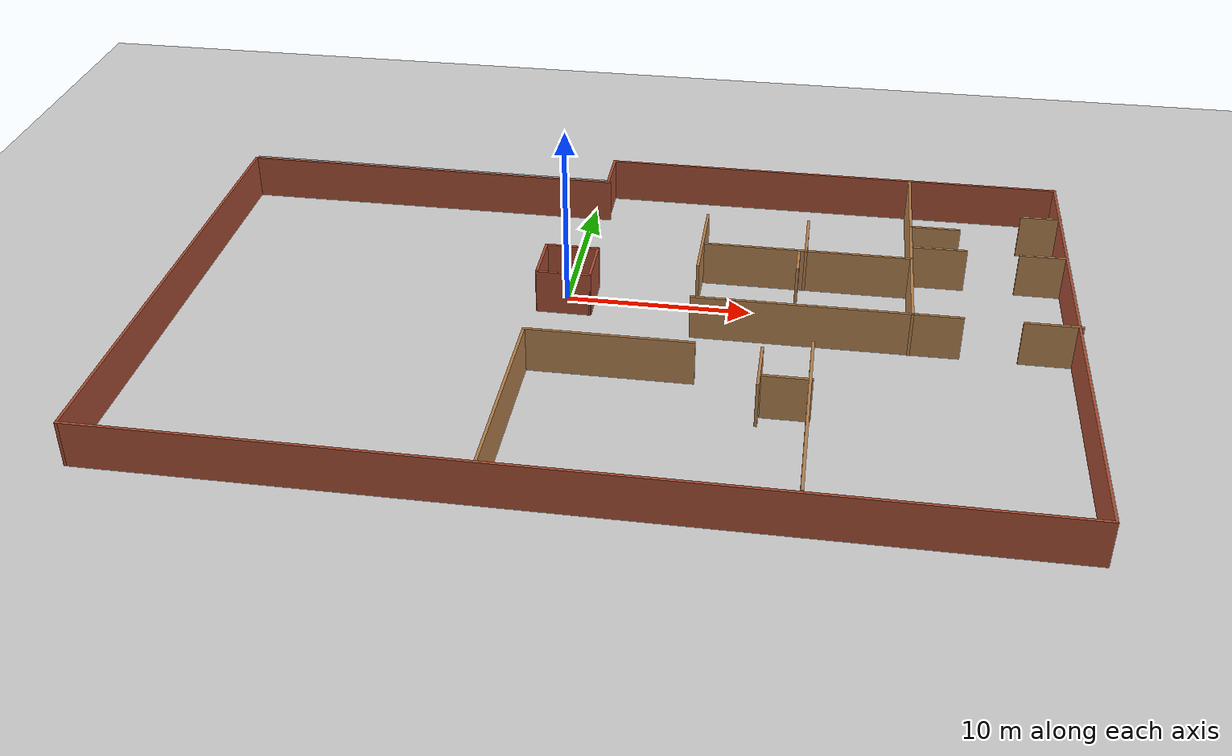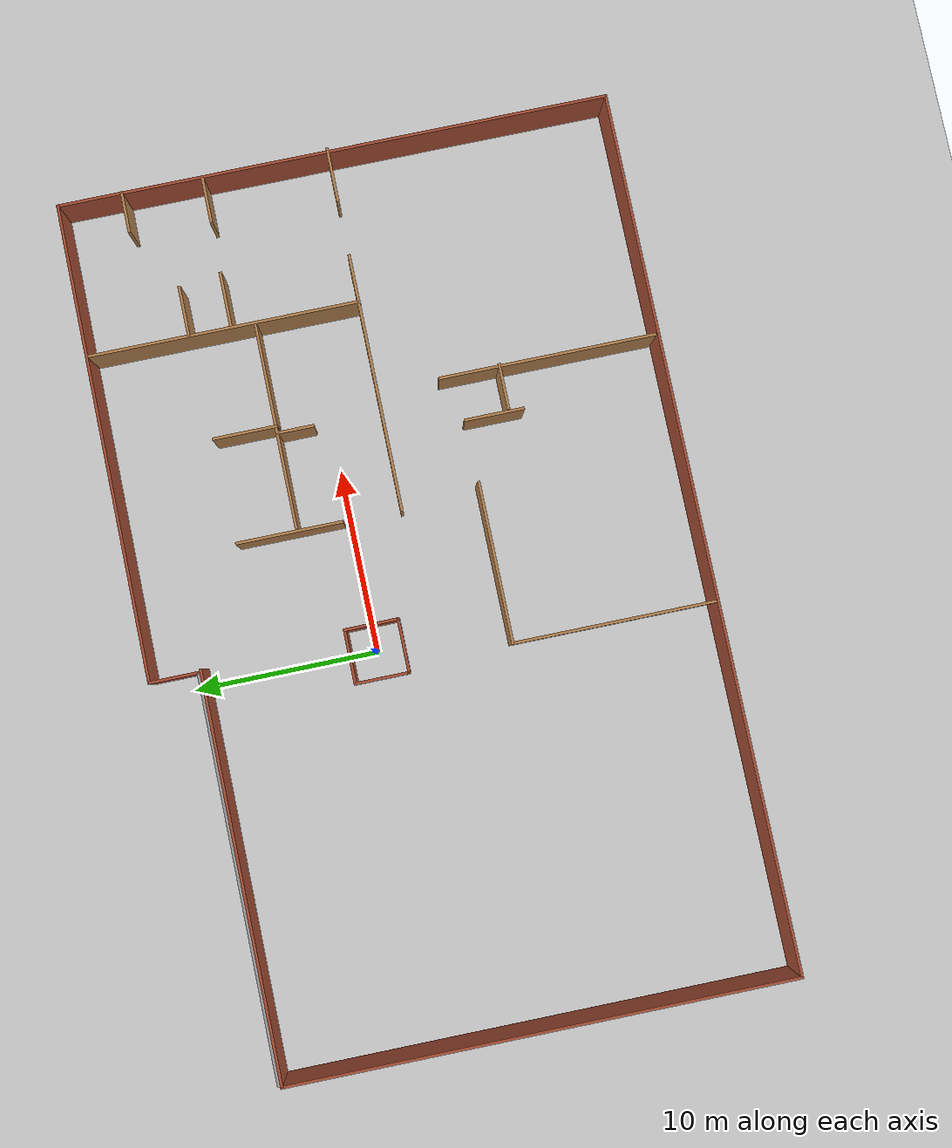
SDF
<sdf version="1.6">
 <world name="default">
  <light name="sun" type="directional">
   <pose>0 0 10 0 -0 0</pose>
   <diffuse>0.8 0.8 0.8 1</diffuse>
   <specular>0.2 0.2 0.2 1</specular>
   <attenuation>
    <range>1000</range>
    <constant>0.9</constant>
    <linear>0.01</linear>
    <quadratic>0.001</quadratic>
   </attenuation>
   <direction>-0.5 0.1 -0.9</direction>
  </light>
  <model name="ground_plane">
   <static>1</static>
   <link name="link">
    <collision name="collision">
     <geometry><plane><normal>0 0 1</normal><size>100 100</size></plane></geometry>
     <surface>
      <contact><collide_bitmask>65535</collide_bitmask></contact>
      <friction><ode><mu>100</mu><mu2>50</mu2></ode></friction>
     </surface>
    </collision>
    <visual name="visual">
     <cast_shadows>0</cast_shadows>
     <geometry><plane><normal>0 0 1</normal><size>100 100</size></plane></geometry>
     <material>
      <script><uri>file://media/materials/scripts/gazebo.material</uri><name>Gazebo/Grey</name></script>
     </material>
    </visual>
   </link>
  </model>
  <gravity>0 0 -9.8</gravity>
  <magnetic_field>6e-06 2.3e-05 -4.2e-05</magnetic_field>
  <atmosphere type="adiabatic"/>
  <physics name="default_physics" default="0" type="ode">
   <max_step_size>0.001</max_step_size>
   <real_time_factor>1</real_time_factor>
   <real_time_update_rate>1000</real_time_update_rate>
  </physics>
  <scene><ambient>0.4 0.4 0.4 1</ambient><background>0.7 0.7 0.7 1</background><shadows>1</shadows></scene>
  <audio><device>default</device></audio>
  <spherical_coordinates>
   <surface_model>EARTH_WGS84</surface_model>
   <latitude_deg>0</latitude_deg>
   <longitude_deg>0</longitude_deg>
   <elevation>0</elevation>
   <heading_deg>0</heading_deg>
  </spherical_coordinates>
  <model name="test_house">
   <pose>3.08317 -3.02736 0 0 -0 0</pose>
   <link name="Wall_0">
    <collision name="Wall_0_Collision">
     <geometry><box><size>21.5 0.15 2.5</size></box></geometry>
     <pose>0 0 1.25 0 -0 0</pose>
    </collision>
    <visual name="Wall_0_Visual">
     <pose>0 0 1.25 0 -0 0</pose>
     <geometry><box><size>21.5 0.15 2.5</size></box></geometry>
     <material>
      <script><uri>file://media/materials/scripts/gazebo.material</uri><name>Gazebo/Grey</name></script>
      <ambient>1 1 1 1</ambient>
     </material>
     <meta><layer>0</layer></meta>
    </visual>
    <pose>-12.9266 12.325 0 0 -0 0</pose>
   </link>
   <link name="Wall_1">
    <collision name="Wall_1_Collision">
     <geometry><box><size>2.75 0.15 2.5</size></box></geometry>
     <pose>0 0 1.25 0 -0 0</pose>
    </collision>
    <visual name="Wall_1_Visual">
     <pose>0 0 1.25 0 -0 0</pose>
     <geometry><box><size>2.75 0.15 2.5</size></box></geometry>
     <material>
      <script><uri>file://media/materials/scripts/gazebo.material</uri><name>Gazebo/Bricks</name></script>
      <ambient>1 1 1 1</ambient>
     </material>
     <meta><layer>0</layer></meta>
    </visual>
    <pose>-2.2516 13.625 0 0 -0 1.5708</pose>
   </link>
   <link name="Wall_10">
    <collision name="Wall_10_Collision">
     <geometry><box><size>3 0.15 2.5</size></box></geometry>
     <pose>0 0 1.25 0 -0 0</pose>
    </collision>
    <visual name="Wall_10_Visual">
     <pose>0 0 1.25 0 -0 0</pose>
     <geometry><box><size>3 0.15 2.5</size></box></geometry>
     <material>
      <script><uri>file://media/materials/scripts/gazebo.material</uri><name>Gazebo/Bricks</name></script>
      <ambient>1 1 1 1</ambient>
     </material>
     <meta><layer>0</layer></meta>
    </visual>
    <pose>-1.61643 3.02443 0 0 -0 1.5708</pose>
   </link>
   <link name="Wall_11">
    <collision name="Wall_11_Collision">
     <geometry><box><size>3 0.15 2.5</size></box></geometry>
     <pose>0 0 1.25 0 -0 0</pose>
    </collision>
    <visual name="Wall_11_Visual">
     <pose>0 0 1.25 0 -0 0</pose>
     <geometry><box><size>3 0.15 2.5</size></box></geometry>
     <material>
      <script><uri>file://media/materials/scripts/gazebo.material</uri><name>Gazebo/Bricks</name></script>
      <ambient>1 1 1 1</ambient>
     </material>
     <meta><layer>0</layer></meta>
    </visual>
    <pose>-3.04143 4.44943 0 0 -0 3.14159</pose>
   </link>
   <link name="Wall_13">
    <collision name="Wall_13_Collision">
     <geometry><box><size>5.75 0.15 2.5</size></box></geometry>
     <pose>0 0 1.25 0 -0 0</pose>
    </collision>
    <visual name="Wall_13_Visual">
     <pose>0 0 1.25 0 -0 0</pose>
     <geometry><box><size>5.75 0.15 2.5</size></box></geometry>
     <material>
      <script><uri>file://media/materials/scripts/gazebo.material</uri><name>Gazebo/Wood</name></script>
      <ambient>1 1 1 1</ambient>
     </material>
     <meta><layer>0</layer></meta>
    </visual>
    <pose>3.96289 6.26402 0 0 -0 -1.5708</pose>
   </link>
   <link name="Wall_15">
    <collision name="Wall_15_Collision">
     <geometry><box><size>11.25 0.15 2.5</size></box></geometry>
     <pose>0 0 1.25 0 -0 0</pose>
    </collision>
    <visual name="Wall_15_Visual">
     <pose>0 0 1.25 0 -0 0</pose>
     <geometry><box><size>11.25 0.15 2.5</size></box></geometry>
     <material>
      <script><uri>file://media/materials/scripts/gazebo.material</uri><name>Gazebo/Wood</name></script>
      <ambient>1 1 1 1</ambient>
     </material>
     <meta><layer>0</layer></meta>
    </visual>
    <pose>9.69747 5.86457 0 0 -0 0</pose>
   </link>
   <link name="Wall_17">
    <collision name="Wall_17_Collision">
     <geometry><box><size>3.5 0.15 2.5</size></box></geometry>
     <pose>0 0 1.25 0 -0 0</pose>
    </collision>
    <visual name="Wall_17_Visual">
     <pose>0 0 1.25 0 -0 0</pose>
     <geometry><box><size>3.5 0.15 2.5</size></box></geometry>
     <material>
      <script><uri>file://media/materials/scripts/gazebo.material</uri><name>Gazebo/Wood</name></script>
      <ambient>1 1 1 1</ambient>
     </material>
     <meta><layer>0</layer></meta>
    </visual>
    <pose>9.62345 7.51208 0 0 -0 -1.5708</pose>
   </link>
   <link name="Wall_2">
    <collision name="Wall_2_Collision">
     <geometry><box><size>26 0.15 2.5</size></box></geometry>
     <pose>0 0 1.25 0 -0 0</pose>
    </collision>
    <visual name="Wall_2_Visual">
     <pose>0 0 1.25 0 -0 0</pose>
     <geometry><box><size>26 0.15 2.5</size></box></geometry>
     <material>
      <script><uri>file://media/materials/scripts/gazebo.material</uri><name>Gazebo/Bricks</name></script>
      <ambient>1 1 1 1</ambient>
     </material>
     <meta><layer>0</layer></meta>
    </visual>
    <pose>10.6734 14.925 0 0 -0 0</pose>
   </link>
   <link name="Wall_20">
    <collision name="Wall_20_Collision">
     <geometry><box><size>2 0.15 2.5</size></box></geometry>
     <pose>0 0 1.25 0 -0 0</pose>
    </collision>
    <visual name="Wall_20_Visual">
     <pose>0 0 1.25 0 -0 0</pose>
     <geometry><box><size>2 0.15 2.5</size></box></geometry>
     <material>
      <script><uri>file://media/materials/scripts/gazebo.material</uri><name>Gazebo/Wood</name></script>
      <ambient>1 1 1 1</ambient>
     </material>
     <meta><layer>0</layer></meta>
    </visual>
    <pose>9.25429 4.88221 0 0 -0 1.5708</pose>
   </link>
   <link name="Wall_22">
    <collision name="Wall_22_Collision">
     <geometry><box><size>14.75 0.15 2.5</size></box></geometry>
     <pose>0 0 1.25 0 -0 0</pose>
    </collision>
    <visual name="Wall_22_Visual">
     <pose>0 0 1.25 0 -0 0</pose>
     <geometry><box><size>14.75 0.15 2.5</size></box></geometry>
     <material>
      <script><uri>file://media/materials/scripts/gazebo.material</uri><name>Gazebo/Wood</name></script>
      <ambient>1 1 1 1</ambient>
     </material>
     <meta><layer>0</layer></meta>
    </visual>
    <pose>15.284 7.54764 0 0 -0 -1.5708</pose>
   </link>
   <link name="Wall_24">
    <collision name="Wall_24_Collision">
     <geometry><box><size>14 0.15 2.5</size></box></geometry>
     <pose>0 0 1.25 0 -0 0</pose>
    </collision>
    <visual name="Wall_24_Visual">
     <pose>0 0 1.25 0 -0 0</pose>
     <geometry><box><size>14 0.15 2.5</size></box></geometry>
     <material>
      <script><uri>file://media/materials/scripts/gazebo.material</uri><name>Gazebo/Wood</name></script>
      <ambient>1 1 1 1</ambient>
     </material>
     <meta><layer>0</layer></meta>
    </visual>
    <pose>10.8879 0.265536 0 0 -0 0</pose>
   </link>
   <link name="Wall_27">
    <collision name="Wall_27_Collision">
     <geometry><box><size>3 0.15 2.5</size></box></geometry>
     <pose>0 0 1.25 0 -0 0</pose>
    </collision>
    <visual name="Wall_27_Visual">
     <pose>0 0 1.25 0 -0 0</pose>
     <geometry><box><size>3 0.15 2.5</size></box></geometry>
     <material>
      <script><uri>file://media/materials/scripts/gazebo.material</uri><name>Gazebo/Wood</name></script>
      <ambient>1 1 1 1</ambient>
     </material>
     <meta><layer>0</layer></meta>
    </visual>
    <pose>22.3266 0.260659 0 0 -0 0</pose>
   </link>
   <link name="Wall_29">
    <collision name="Wall_29_Collision">
     <geometry><box><size>2.75 0.15 2.5</size></box></geometry>
     <pose>0 0 1.25 0 -0 0</pose>
    </collision>
    <visual name="Wall_29_Visual">
     <pose>0 0 1.25 0 -0 0</pose>
     <geometry><box><size>2.75 0.15 2.5</size></box></geometry>
     <material>
      <script><uri>file://media/materials/scripts/gazebo.material</uri><name>Gazebo/Wood</name></script>
      <ambient>1 1 1 1</ambient>
     </material>
     <meta><layer>0</layer></meta>
    </visual>
    <pose>16.6483 9.42831 0 0 -0 3.14159</pose>
   </link>
   <link name="Wall_3">
    <collision name="Wall_3_Collision">
     <geometry><box><size>30 0.15 2.5</size></box></geometry>
     <pose>0 0 1.25 0 -0 0</pose>
    </collision>
    <visual name="Wall_3_Visual">
     <pose>0 0 1.25 0 -0 0</pose>
     <geometry><box><size>30 0.15 2.5</size></box></geometry>
     <material>
      <script><uri>file://media/materials/scripts/gazebo.material</uri><name>Gazebo/Bricks</name></script>
      <ambient>1 1 1 1</ambient>
     </material>
     <meta><layer>0</layer></meta>
    </visual>
    <pose>23.5984 -0 0 0 -0 -1.5708</pose>
   </link>
   <link name="Wall_31">
    <collision name="Wall_31_Collision">
     <geometry><box><size>3 0.15 2.5</size></box></geometry>
     <pose>0 0 1.25 0 -0 0</pose>
    </collision>
    <visual name="Wall_31_Visual">
     <pose>0 0 1.25 0 -0 0</pose>
     <geometry><box><size>3 0.15 2.5</size></box></geometry>
     <material>
      <script><uri>file://media/materials/scripts/gazebo.material</uri><name>Gazebo/Wood</name></script>
      <ambient>1 1 1 1</ambient>
     </material>
     <meta><layer>0</layer></meta>
    </visual>
    <pose>16.8309 7.15178 0 0 -0 3.14159</pose>
   </link>
   <link name="Wall_33">
    <collision name="Wall_33_Collision">
     <geometry><box><size>2.25 0.15 2.5</size></box></geometry>
     <pose>0 0 1.25 0 -0 0</pose>
    </collision>
    <visual name="Wall_33_Visual">
     <pose>0 0 1.25 0 -0 0</pose>
     <geometry><box><size>2.25 0.15 2.5</size></box></geometry>
     <material>
      <script><uri>file://media/materials/scripts/gazebo.material</uri><name>Gazebo/Wood</name></script>
      <ambient>1 1 1 1</ambient>
     </material>
     <meta><layer>0</layer></meta>
    </visual>
    <pose>22.5669 11.4587 0 0 -0 0</pose>
   </link>
   <link name="Wall_35">
    <collision name="Wall_35_Collision">
     <geometry><box><size>2.5 0.15 2.5</size></box></geometry>
     <pose>0 0 1.25 0 -0 0</pose>
    </collision>
    <visual name="Wall_35_Visual">
     <pose>0 0 1.25 0 -0 0</pose>
     <geometry><box><size>2.5 0.15 2.5</size></box></geometry>
     <material>
      <script><uri>file://media/materials/scripts/gazebo.material</uri><name>Gazebo/Wood</name></script>
      <ambient>1 1 1 1</ambient>
     </material>
     <meta><layer>0</layer></meta>
    </visual>
    <pose>22.3227 7.09025 0 0 -0 0</pose>
   </link>
   <link name="Wall_37">
    <collision name="Wall_37_Collision">
     <geometry><box><size>11.75 0.15 2.5</size></box></geometry>
     <pose>0 0 1.25 0 -0 0</pose>
    </collision>
    <visual name="Wall_37_Visual">
     <pose>0 0 1.25 0 -0 0</pose>
     <geometry><box><size>11.75 0.15 2.5</size></box></geometry>
     <material>
      <script><uri>file://media/materials/scripts/gazebo.material</uri><name>Gazebo/Wood</name></script>
      <ambient>1 1 1 1</ambient>
     </material>
     <meta><layer>0</layer></meta>
    </visual>
    <pose>10.3803 -8.92337 0 0 -0 -1.5708</pose>
   </link>
   <link name="Wall_39">
    <collision name="Wall_39_Collision">
     <geometry><box><size>3.25 0.15 2.5</size></box></geometry>
     <pose>0 0 1.25 0 -0 0</pose>
    </collision>
    <visual name="Wall_39_Visual">
     <pose>0 0 1.25 0 -0 0</pose>
     <geometry><box><size>3.25 0.15 2.5</size></box></geometry>
     <material>
      <script><uri>file://media/materials/scripts/gazebo.material</uri><name>Gazebo/Wood</name></script>
      <ambient>1 1 1 1</ambient>
     </material>
     <meta><layer>0</layer></meta>
    </visual>
    <pose>7.91922 -5.53476 0 0 -0 -1.5708</pose>
   </link>
   <link name="Wall_4">
    <collision name="Wall_4_Collision">
     <geometry><box><size>47.5 0.15 2.5</size></box></geometry>
     <pose>0 0 1.25 0 -0 0</pose>
    </collision>
    <visual name="Wall_4_Visual">
     <pose>0 0 1.25 0 -0 0</pose>
     <geometry><box><size>47.5 0.15 2.5</size></box></geometry>
     <material>
      <script><uri>file://media/materials/scripts/gazebo.material</uri><name>Gazebo/Bricks</name></script>
      <ambient>1 1 1 1</ambient>
     </material>
     <meta><layer>0</layer></meta>
    </visual>
    <pose>-0.076599 -14.925 0 0 -0 3.14159</pose>
   </link>
   <link name="Wall_41">
    <collision name="Wall_41_Collision">
     <geometry><box><size>2.5 0.15 2.5</size></box></geometry>
     <pose>0 0 1.25 0 -0 0</pose>
    </collision>
    <visual name="Wall_41_Visual">
     <pose>0 0 1.25 0 -0 0</pose>
     <geometry><box><size>2.5 0.15 2.5</size></box></geometry>
     <material>
      <script><uri>file://media/materials/scripts/gazebo.material</uri><name>Gazebo/Wood</name></script>
      <ambient>1 1 1 1</ambient>
     </material>
     <meta><layer>0</layer></meta>
    </visual>
    <pose>9.2788 -6.32282 0 0 -0 0</pose>
   </link>
   <link name="Wall_43">
    <collision name="Wall_43_Collision">
     <geometry><box><size>8.75 0.15 2.5</size></box></geometry>
     <pose>0 0 1.25 0 -0 0</pose>
    </collision>
    <visual name="Wall_43_Visual">
     <pose>0 0 1.25 0 -0 0</pose>
     <geometry><box><size>8.75 0.15 2.5</size></box></geometry>
     <material>
      <script><uri>file://media/materials/scripts/gazebo.material</uri><name>Gazebo/Wood</name></script>
      <ambient>1 1 1 1</ambient>
     </material>
     <meta><layer>0</layer></meta>
    </visual>
    <pose>0.235185 -3.98476 0 0 -0 3.14159</pose>
   </link>
   <link name="Wall_44">
    <collision name="Wall_44_Collision">
     <geometry><box><size>11 0.15 2.5</size></box></geometry>
     <pose>0 0 1.25 0 -0 0</pose>
    </collision>
    <visual name="Wall_44_Visual">
     <pose>0 0 1.25 0 -0 0</pose>
     <geometry><box><size>11 0.15 2.5</size></box></geometry>
     <material>
      <script><uri>file://media/materials/scripts/gazebo.material</uri><name>Gazebo/Wood</name></script>
      <ambient>1 1 1 1</ambient>
     </material>
     <meta><layer>0</layer></meta>
    </visual>
    <pose>-4.06482 -9.40976 0 0 -0 -1.5708</pose>
   </link>
   <link name="Wall_5">
    <collision name="Wall_5_Collision">
     <geometry><box><size>27.25 0.15 2.5</size></box></geometry>
     <pose>0 0 1.25 0 -0 0</pose>
    </collision>
    <visual name="Wall_5_Visual">
     <pose>0 0 1.25 0 -0 0</pose>
     <geometry><box><size>27.25 0.15 2.5</size></box></geometry>
     <material>
      <script><uri>file://media/materials/scripts/gazebo.material</uri><name>Gazebo/Bricks</name></script>
      <ambient>1 1 1 1</ambient>
     </material>
     <meta><layer>0</layer></meta>
    </visual>
    <pose>-23.7516 -1.375 0 0 -0 1.5708</pose>
   </link>
   <link name="Wall_6">
    <collision name="Wall_6_Collision">
     <geometry><box><size>21.75 0.15 2.5</size></box></geometry>
     <pose>0 0 1.25 0 -0 0</pose>
    </collision>
    <visual name="Wall_6_Visual">
     <pose>0 0 1.25 0 -0 0</pose>
     <geometry><box><size>21.75 0.15 2.5</size></box></geometry>
     <material>
      <script><uri>file://media/materials/scripts/gazebo.material</uri><name>Gazebo/Bricks</name></script>
      <ambient>1 1 1 1</ambient>
     </material>
     <meta><layer>0</layer></meta>
    </visual>
    <pose>-12.9516 12.175 0 0 -0 0</pose>
   </link>
   <link name="Wall_8">
    <collision name="Wall_8_Collision">
     <geometry><box><size>3 0.15 2.5</size></box></geometry>
     <pose>0 0 1.25 0 -0 0</pose>
    </collision>
    <visual name="Wall_8_Visual">
     <pose>0 0 1.25 0 -0 0</pose>
     <geometry><box><size>3 0.15 2.5</size></box></geometry>
     <material>
      <script><uri>file://media/materials/scripts/gazebo.material</uri><name>Gazebo/Bricks</name></script>
      <ambient>1 1 1 1</ambient>
     </material>
     <meta><layer>0</layer></meta>
    </visual>
    <pose>-4.46643 3.02443 0 0 -0 -1.5708</pose>
   </link>
   <link name="Wall_9">
    <collision name="Wall_9_Collision">
     <geometry><box><size>3 0.15 2.5</size></box></geometry>
     <pose>0 0 1.25 0 -0 0</pose>
    </collision>
    <visual name="Wall_9_Visual">
     <pose>0 0 1.25 0 -0 0</pose>
     <geometry><box><size>3 0.15 2.5</size></box></geometry>
     <material>
      <script><uri>file://media/materials/scripts/gazebo.material</uri><name>Gazebo/Bricks</name></script>
      <ambient>1 1 1 1</ambient>
     </material>
     <meta><layer>0</layer></meta>
    </visual>
    <pose>-3.04143 1.59943 0 0 -0 0</pose>
   </link>
   <static>1</static>
  </model>
 </world>
</sdf>
